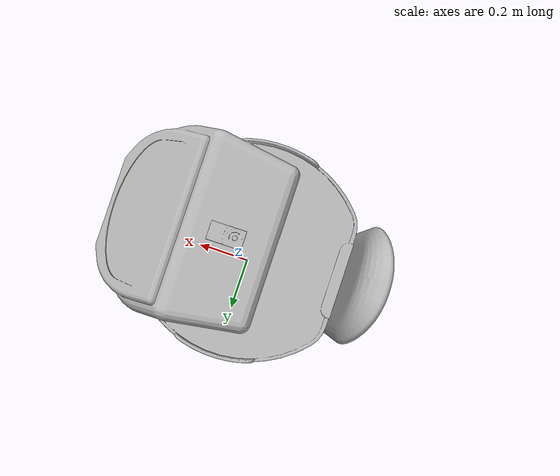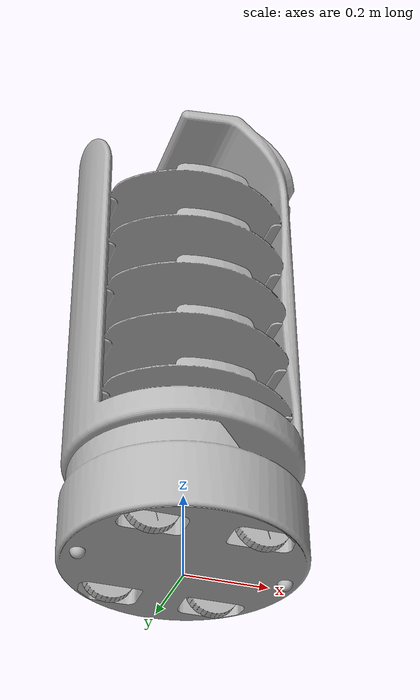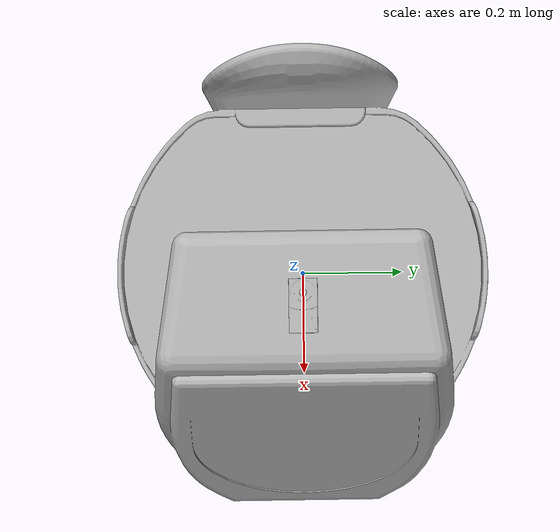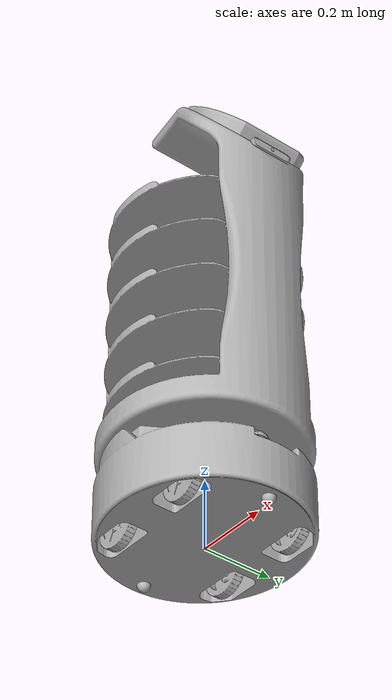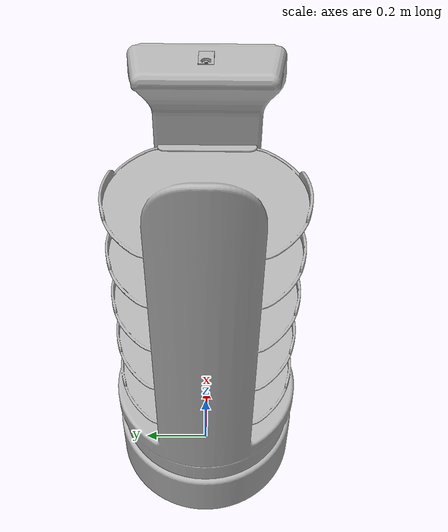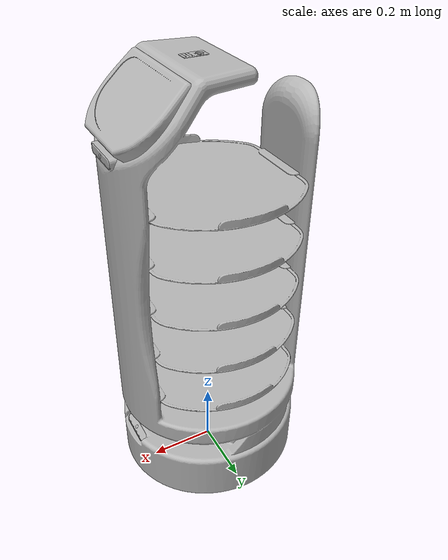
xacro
<?xml version="1.0" ?>
<robot name="waiter_bot" xmlns:xacro="http://www.ros.org/wiki/xacro">

<xacro:include filename="$(find waiter_bot_description)/urdf/materials.xacro" />
<xacro:include filename="$(find waiter_bot_description)/urdf/waiter_bot.trans" />
<xacro:include filename="$(find waiter_bot_description)/urdf/waiter_bot.gazebo" />
<link name="base_link">
  <inertial>
    <origin rpy="0 0 0" xyz="0.00015850885114610685 8.104493708982607e-06 0.4224690664746022"/>
    <mass value="82.92733660749995"/>
    <inertia ixx="12.32713" ixy="-4e-06" ixz="-0.736611" iyy="13.64382" iyz="-8.6e-05" izz="3.690413"/>
  </inertial>
  <visual>
    <origin rpy="0 0 0" xyz="0 0 0"/>
    <geometry>
      <mesh filename="package://waiter_bot_description/meshes/base_link.stl" scale="0.001 0.001 0.001"/>
    </geometry>
    <material name="silver"/>
  </visual>
  <collision>
    <origin rpy="0 0 0" xyz="0 0 0"/>
    <geometry>
      <mesh filename="package://waiter_bot_description/meshes/base_link.stl" scale="0.001 0.001 0.001"/>
    </geometry>
  </collision>
</link>

<link name="RF_wheel_1">
  <inertial>
    <origin rpy="0 0 0" xyz="-1.0849880877281115e-05 0.010620326001437946 2.2832589084698096e-07"/>
    <mass value="1.3869748359513263"/>
    <inertia ixx="0.001952" ixy="-0.0" ixz="-0.0" iyy="0.003745" iyz="0.0" izz="0.001951"/>
  </inertial>
  <visual>
    <origin rpy="0 0 0" xyz="-0.125 0.1777 -0.062699"/>
    <geometry>
      <mesh filename="package://waiter_bot_description/meshes/RF_wheel_1.stl" scale="0.001 0.001 0.001"/>
    </geometry>
    <material name="silver"/>
  </visual>
  <collision>
    <origin rpy="0 0 0" xyz="-0.125 0.1777 -0.062699"/>
    <geometry>
      <mesh filename="package://waiter_bot_description/meshes/RF_wheel_1.stl" scale="0.001 0.001 0.001"/>
    </geometry>
  </collision>
</link>

<link name="LF_wheel_1">
  <inertial>
    <origin rpy="0 0 0" xyz="-1.0876810845258933e-05 -0.010620183619669932 3.0815007066864464e-07"/>
    <mass value="1.386972282070242"/>
    <inertia ixx="0.001952" ixy="0.0" ixz="-0.0" iyy="0.003745" iyz="-0.0" izz="0.001951"/>
  </inertial>
  <visual>
    <origin rpy="0 0 0" xyz="-0.125 -0.177708 -0.062699"/>
    <geometry>
      <mesh filename="package://waiter_bot_description/meshes/LF_wheel_1.stl" scale="0.001 0.001 0.001"/>
    </geometry>
    <material name="silver"/>
  </visual>
  <collision>
    <origin rpy="0 0 0" xyz="-0.125 -0.177708 -0.062699"/>
    <geometry>
      <mesh filename="package://waiter_bot_description/meshes/LF_wheel_1.stl" scale="0.001 0.001 0.001"/>
    </geometry>
  </collision>
</link>

<link name="LB_wheel_1">
  <inertial>
    <origin rpy="0 0 0" xyz="1.0528592677860882e-05 -0.010620184231134755 2.884657919616229e-07"/>
    <mass value="1.3869726779700595"/>
    <inertia ixx="0.001952" ixy="-0.0" ixz="-0.0" iyy="0.003745" iyz="0.0" izz="0.001951"/>
  </inertial>
  <visual>
    <origin rpy="0 0 0" xyz="0.125268 -0.177708 -0.062699"/>
    <geometry>
      <mesh filename="package://waiter_bot_description/meshes/LB_wheel_1.stl" scale="0.001 0.001 0.001"/>
    </geometry>
    <material name="silver"/>
  </visual>
  <collision>
    <origin rpy="0 0 0" xyz="0.125268 -0.177708 -0.062699"/>
    <geometry>
      <mesh filename="package://waiter_bot_description/meshes/LB_wheel_1.stl" scale="0.001 0.001 0.001"/>
    </geometry>
  </collision>
</link>

<link name="RB_wheel_1">
  <inertial>
    <origin rpy="0 0 0" xyz="1.0585566301235527e-05 0.010620326512925077 1.9632257226842587e-07"/>
    <mass value="1.3869747655938025"/>
    <inertia ixx="0.001952" ixy="0.0" ixz="0.0" iyy="0.003745" iyz="-0.0" izz="0.001951"/>
  </inertial>
  <visual>
    <origin rpy="0 0 0" xyz="0.125268 0.1777 -0.062699"/>
    <geometry>
      <mesh filename="package://waiter_bot_description/meshes/RB_wheel_1.stl" scale="0.001 0.001 0.001"/>
    </geometry>
    <material name="silver"/>
  </visual>
  <collision>
    <origin rpy="0 0 0" xyz="0.125268 0.1777 -0.062699"/>
    <geometry>
      <mesh filename="package://waiter_bot_description/meshes/RB_wheel_1.stl" scale="0.001 0.001 0.001"/>
    </geometry>
  </collision>
</link>

<link name="castor_b_1">
  <inertial>
    <origin rpy="0 0 0" xyz="-4.887251182084107e-07 2.769780584099054e-07 -0.006282365834419015"/>
    <mass value="0.09188978524671036"/>
    <inertia ixx="7e-06" ixy="0.0" ixz="-0.0" iyy="7e-06" iyz="-0.0" izz="1.1e-05"/>
  </inertial>
  <visual>
    <origin rpy="0 0 0" xyz="0.240005 0.000217 -0.018152"/>
    <geometry>
      <mesh filename="package://waiter_bot_description/meshes/castor_b_1.stl" scale="0.001 0.001 0.001"/>
    </geometry>
    <material name="silver"/>
  </visual>
  <collision>
    <origin rpy="0 0 0" xyz="0.240005 0.000217 -0.018152"/>
    <geometry>
      <mesh filename="package://waiter_bot_description/meshes/castor_b_1.stl" scale="0.001 0.001 0.001"/>
    </geometry>
  </collision>
</link>

<link name="castor_f_1">
  <inertial>
    <origin rpy="0 0 0" xyz="-4.887251182361663e-07 2.769780584182266e-07 -0.006782365834419015"/>
    <mass value="0.09188978524671036"/>
    <inertia ixx="7e-06" ixy="0.0" ixz="-0.0" iyy="7e-06" iyz="-0.0" izz="1.1e-05"/>
  </inertial>
  <visual>
    <origin rpy="0 0 0" xyz="-0.239995 0.000217 -0.018152"/>
    <geometry>
      <mesh filename="package://waiter_bot_description/meshes/castor_f_1.stl" scale="0.001 0.001 0.001"/>
    </geometry>
    <material name="silver"/>
  </visual>
  <collision>
    <origin rpy="0 0 0" xyz="-0.239995 0.000217 -0.018152"/>
    <geometry>
      <mesh filename="package://waiter_bot_description/meshes/castor_f_1.stl" scale="0.001 0.001 0.001"/>
    </geometry>
  </collision>
</link>

<link name="bottom_camera_1">
  <inertial>
    <origin rpy="0 0 0" xyz="0.009135027943883017 0.00035937558131350357 0.010008510128471121"/>
    <mass value="0.02761517149778078"/>
    <inertia ixx="3.9e-05" ixy="-0.0" ixz="0.0" iyy="5e-06" iyz="0.0" izz="3.9e-05"/>
  </inertial>
  <visual>
    <origin rpy="0 0 0" xyz="-0.240953 1.1e-05 -0.147021"/>
    <geometry>
      <mesh filename="package://waiter_bot_description/meshes/bottom_camera_1.stl" scale="0.001 0.001 0.001"/>
    </geometry>
    <material name="silver"/>
  </visual>
  <collision>
    <origin rpy="0 0 0" xyz="-0.240953 1.1e-05 -0.147021"/>
    <geometry>
      <mesh filename="package://waiter_bot_description/meshes/bottom_camera_1.stl" scale="0.001 0.001 0.001"/>
    </geometry>
  </collision>
</link>

<link name="b_lens_1">
  <inertial>
    <origin rpy="0 0 0" xyz="0.0003294997563826896 4.034308861094136e-07 0.00034740560510687635"/>
    <mass value="0.00021637150035241193"/>
    <inertia ixx="0.0" ixy="0.0" ixz="0.0" iyy="0.0" iyz="-0.0" izz="0.0"/>
  </inertial>
  <visual>
    <origin rpy="0 0 0" xyz="-0.258786 1.1e-05 -0.165805"/>
    <geometry>
      <mesh filename="package://waiter_bot_description/meshes/b_lens_1.stl" scale="0.001 0.001 0.001"/>
    </geometry>
    <material name="silver"/>
  </visual>
  <collision>
    <origin rpy="0 0 0" xyz="-0.258786 1.1e-05 -0.165805"/>
    <geometry>
      <mesh filename="package://waiter_bot_description/meshes/b_lens_1.stl" scale="0.001 0.001 0.001"/>
    </geometry>
  </collision>
</link>

<link name="lidar_1">
  <inertial>
    <origin rpy="0 0 0" xyz="-0.00026087384638012745 -2.2372644981951686e-07 -0.009057087464498459"/>
    <mass value="0.24958698875333066"/>
    <inertia ixx="0.000147" ixy="0.0" ixz="1e-06" iyy="0.000145" iyz="0.0" izz="0.000208"/>
  </inertial>
  <visual>
    <origin rpy="0 0 0" xyz="-0.183375 2.5e-05 -0.211152"/>
    <geometry>
      <mesh filename="package://waiter_bot_description/meshes/lidar_1.stl" scale="0.001 0.001 0.001"/>
    </geometry>
    <material name="silver"/>
  </visual>
  <collision>
    <origin rpy="0 0 0" xyz="-0.183375 2.5e-05 -0.211152"/>
    <geometry>
      <mesh filename="package://waiter_bot_description/meshes/lidar_1.stl" scale="0.001 0.001 0.001"/>
    </geometry>
  </collision>
</link>

<link name="front_camera_1">
  <inertial>
    <origin rpy="0 0 0" xyz="0.013546788294130752 0.0003620979990916379 0.00026581855348162264"/>
    <mass value="0.02761675464418201"/>
    <inertia ixx="3.9e-05" ixy="0.0" ixz="0.0" iyy="5e-06" iyz="0.0" izz="3.9e-05"/>
  </inertial>
  <visual>
    <origin rpy="0 0 0" xyz="-0.257516 -4e-06 -1.112152"/>
    <geometry>
      <mesh filename="package://waiter_bot_description/meshes/front_camera_1.stl" scale="0.001 0.001 0.001"/>
    </geometry>
    <material name="silver"/>
  </visual>
  <collision>
    <origin rpy="0 0 0" xyz="-0.257516 -4e-06 -1.112152"/>
    <geometry>
      <mesh filename="package://waiter_bot_description/meshes/front_camera_1.stl" scale="0.001 0.001 0.001"/>
    </geometry>
  </collision>
</link>

<link name="f_lens_1">
  <inertial>
    <origin rpy="0 0 0" xyz="0.0004791081817097087 6.861266630813075e-08 1.6388644108467076e-07"/>
    <mass value="0.0002163715003524205"/>
    <inertia ixx="0.0" ixy="-0.0" ixz="0.0" iyy="0.0" iyz="0.0" izz="0.0"/>
  </inertial>
  <visual>
    <origin rpy="0 0 0" xyz="-0.283416 -4e-06 -1.112152"/>
    <geometry>
      <mesh filename="package://waiter_bot_description/meshes/f_lens_1.stl" scale="0.001 0.001 0.001"/>
    </geometry>
    <material name="silver"/>
  </visual>
  <collision>
    <origin rpy="0 0 0" xyz="-0.283416 -4e-06 -1.112152"/>
    <geometry>
      <mesh filename="package://waiter_bot_description/meshes/f_lens_1.stl" scale="0.001 0.001 0.001"/>
    </geometry>
  </collision>
</link>

<link name="top_camera_1">
  <inertial>
    <origin rpy="0 0 0" xyz="0.0005455138788880223 1.5249271259410112e-05 0.011441567129830021"/>
    <mass value="0.05108071655535039"/>
    <inertia ixx="7e-06" ixy="-0.0" ixz="-0.0" iyy="2e-05" iyz="0.0" izz="2.2e-05"/>
  </inertial>
  <visual>
    <origin rpy="0 0 0" xyz="-0.037384 -4e-06 -1.288152"/>
    <geometry>
      <mesh filename="package://waiter_bot_description/meshes/top_camera_1.stl" scale="0.001 0.001 0.001"/>
    </geometry>
    <material name="silver"/>
  </visual>
  <collision>
    <origin rpy="0 0 0" xyz="-0.037384 -4e-06 -1.288152"/>
    <geometry>
      <mesh filename="package://waiter_bot_description/meshes/top_camera_1.stl" scale="0.001 0.001 0.001"/>
    </geometry>
  </collision>
</link>

<link name="t_lens_1">
  <inertial>
    <origin rpy="0 0 0" xyz="-2.260166132826702e-07 6.878043513783974e-08 0.00047207385274705693"/>
    <mass value="0.00012158891309059741"/>
    <inertia ixx="0.0" ixy="0.0" ixz="0.0" iyy="0.0" iyz="0.0" izz="0.0"/>
  </inertial>
  <visual>
    <origin rpy="0 0 0" xyz="-0.022222 -4e-06 -1.309"/>
    <geometry>
      <mesh filename="package://waiter_bot_description/meshes/t_lens_1.stl" scale="0.001 0.001 0.001"/>
    </geometry>
    <material name="silver"/>
  </visual>
  <collision>
    <origin rpy="0 0 0" xyz="-0.022222 -4e-06 -1.309"/>
    <geometry>
      <mesh filename="package://waiter_bot_description/meshes/t_lens_1.stl" scale="0.001 0.001 0.001"/>
    </geometry>
  </collision>
</link>

<joint name="RF_W" type="continuous">
  <origin rpy="0 0 0" xyz="0.125 -0.1777 0.062699"/>
  <parent link="base_link"/>
  <child link="RF_wheel_1"/>
  <axis xyz="0.0 1.0 -0.0"/>
</joint>

<joint name="LF_W" type="continuous">
  <origin rpy="0 0 0" xyz="0.125 0.177708 0.062699"/>
  <parent link="base_link"/>
  <child link="LF_wheel_1"/>
  <axis xyz="0.0 1.0 -0.0"/>
</joint>

<joint name="LB_W" type="continuous">
  <origin rpy="0 0 0" xyz="-0.125268 0.177708 0.062699"/>
  <parent link="base_link"/>
  <child link="LB_wheel_1"/>
  <axis xyz="0.0 1.0 0.0"/>
</joint>

<joint name="RB_w" type="continuous">
  <origin rpy="0 0 0" xyz="-0.125268 -0.1777 0.062699"/>
  <parent link="base_link"/>
  <child link="RB_wheel_1"/>
  <axis xyz="0.0 1.0 0.0"/>
</joint>

<joint name="castor1" type="fixed">
  <origin rpy="0 0 0" xyz="-0.240005 -0.000217 0.018152"/>
  <parent link="base_link"/>
  <child link="castor_b_1"/>
</joint>

<joint name="castor2" type="fixed">
  <origin rpy="0 0 0" xyz="0.239995 -0.000217 0.018152"/>
  <parent link="base_link"/>
  <child link="castor_f_1"/>
</joint>

<joint name="b_cam" type="fixed">
  <origin rpy="0 0 0" xyz="0.240953 -1.1e-05 0.147021"/>
  <parent link="base_link"/>
  <child link="bottom_camera_1"/>
</joint>

<joint name="B_lens" type="fixed">
  <origin rpy="0 0 0" xyz="0.017833 0.0 0.018784"/>
  <parent link="bottom_camera_1"/>
  <child link="b_lens_1"/>
</joint>

<joint name="lidar_j" type="fixed">
  <origin rpy="0 0 0" xyz="0.183375 -2.5e-05 0.211152"/>
  <parent link="base_link"/>
  <child link="lidar_1"/>
</joint>

<joint name="f_cam" type="fixed">
  <origin rpy="0 0 0" xyz="0.257516 4e-06 1.112152"/>
  <parent link="base_link"/>
  <child link="front_camera_1"/>
</joint>

<joint name="F_lens" type="fixed">
  <origin rpy="0 0 0" xyz="0.0259 0.0 0.0"/>
  <parent link="front_camera_1"/>
  <child link="f_lens_1"/>
</joint>

<joint name="t_cam" type="fixed">
  <origin rpy="0 0 0" xyz="0.037384 4e-06 1.288152"/>
  <parent link="base_link"/>
  <child link="top_camera_1"/>
</joint>

<joint name="T_lens" type="fixed">
  <origin rpy="0 0 0" xyz="-0.015162 0.0 0.020848"/>
  <parent link="top_camera_1"/>
  <child link="t_lens_1"/>
</joint>

</robot>

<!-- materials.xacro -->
<robot name="waiter_bot" xmlns:xacro="http://www.ros.org/wiki/xacro" >

<material name="silver">
  <color rgba="0.700 0.700 0.700 1.000"/>
</material>

</robot>

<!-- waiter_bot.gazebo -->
<robot name="waiter_bot" xmlns:xacro="http://www.ros.org/wiki/xacro" >

<xacro:property name="body_color" value="Gazebo/DarkGrey" />
<xacro:property name="wheel" value="Gazebo/FlatBlack" />
<xacro:property name="camera" value="Gazebo/BlackTransparent" />
<xacro:property name="lidar" value="Gazebo/Blue" />
<xacro:property name="castor" value="Gazebo/Grey" />
<xacro:property name="lens" value="Gazebo/GreyTransparent" />

<gazebo>
  <plugin filename="libgazebo_ros_control.so" name="control"/>
</gazebo>
<gazebo reference="base_link">
  <material>${body_color}</material>
  <mu1>0.2</mu1>
  <mu2>0.2</mu2>
  <selfCollide>true</selfCollide>
  <gravity>true</gravity>
</gazebo>

<gazebo reference="RF_wheel_1">
  <material>${wheel}</material>
  <mu1>0.2</mu1>
  <mu2>0.2</mu2>
  <selfCollide>true</selfCollide>
</gazebo>

<gazebo reference="LF_wheel_1">
  <material>${wheel}</material>
  <mu1>0.2</mu1>
  <mu2>.2</mu2>
  <selfCollide>true</selfCollide>
</gazebo>

<gazebo reference="LB_wheel_1">
  <material>${wheel}</material>
  <mu1>0.2</mu1>
  <mu2>0.2</mu2>
  <selfCollide>true</selfCollide>
</gazebo>

<gazebo reference="RB_wheel_1">
  <material>${wheel}</material>
  <mu1>0.2</mu1>
  <mu2>0.2</mu2>
  <selfCollide>true</selfCollide>
</gazebo>

<gazebo reference="castor_b_1">
  <material>${castor}</material>
  <mu1>0.2</mu1>
  <mu2>0.2</mu2>
  <selfCollide>true</selfCollide>
</gazebo>

<gazebo reference="castor_f_1">
  <material>${castor}</material>
  <mu1>0.2</mu1>
  <mu2>0.2</mu2>
  <selfCollide>true</selfCollide>
</gazebo>

<gazebo reference="bottom_camera_1">
  <material>${camera}</material>
  <mu1>0.2</mu1>
  <mu2>0.2</mu2>
  <selfCollide>true</selfCollide>
</gazebo>

<gazebo reference="b_lens_1">
  <material>${lens}</material>
  <mu1>0.2</mu1>
  <mu2>0.2</mu2>
  <selfCollide>true</selfCollide>
</gazebo>

<gazebo reference="lidar_1">
  <material>${lidar}</material>
  <mu1>0.2</mu1>
  <mu2>0.2</mu2>
  <selfCollide>true</selfCollide>
</gazebo>

<gazebo reference="front_camera_1">
  <material>${camera}</material>
  <mu1>0.2</mu1>
  <mu2>0.2</mu2>
  <selfCollide>true</selfCollide>
</gazebo>

<gazebo reference="f_lens_1">
  <material>${lens}</material>
  <mu1>0.2</mu1>
  <mu2>0.2</mu2>
  <selfCollide>true</selfCollide>
</gazebo>

<gazebo reference="top_camera_1">
  <material>${camera}</material>
  <mu1>0.2</mu1>
  <mu2>0.2</mu2>
  <selfCollide>true</selfCollide>
</gazebo>

<gazebo reference="t_lens_1">
  <material>${lens}</material>
  <mu1>0.2</mu1>
  <mu2>0.2</mu2>
  <selfCollide>true</selfCollide>
</gazebo>

<!-- ********** SKID STEER DRIVE PLUGIN ********** -->
<gazebo>
  <plugin name="skid_steer_drive_controller" filename="libgazebo_ros_skid_steer_drive.so">
    <updateRate>100.0</updateRate>
    <robotNamespace>/</robotNamespace>
    <leftFrontJoint>LF_W</leftFrontJoint>
    <rightFrontJoint>RF_W</rightFrontJoint>
    <leftRearJoint>LB_W</leftRearJoint>
    <rightRearJoint>RB_w</rightRearJoint>
    <wheelSeparation>0.330001</wheelSeparation>
    <wheelDiameter>0.127</wheelDiameter>
    <robotBaseFrame>base_link</robotBaseFrame>
    <torque>10</torque>
    <topicName>cmd_vel</topicName>
    <broadcastTF>true</broadcastTF>
  </plugin>
</gazebo>

<!-- ******* LIDAR PLUGIN ******** -->
  <gazebo reference="lidar_1">
    <sensor type="gpu_ray" name="rplidar_a1">
      <pose>0 0 0 0 0 0</pose>
      <visualize>false</visualize>
      <update_rate>10</update_rate>
      <ray>
        <scan>
          <horizontal>
            <samples>720</samples>
            <resolution>1</resolution>
            <!-- 180 degree left side -->
            <min_angle>-2.0944</min_angle>
            <!-- 180 degree right side -->
            <max_angle>2.0944</max_angle>
          </horizontal>
        </scan>
        <range>
          <min>0.10</min>
          <max>10.0</max>
          <resolution>0.01</resolution>
        </range>
        <noise>
          <type>gaussian</type>
          <mean>0.0</mean>
          <stddev>0.01</stddev>
        </noise>
      </ray>
      <plugin name="gazebo_ros_head_hokuyo_controller" filename="libgazebo_ros_gpu_laser.so">
        <topicName>/scan</topicName>
        <frameName>lidar_1</frameName>
      </plugin>
    </sensor>
  </gazebo>

<!-- *** FRONT DEPTH CAMERA ****** -->
  <gazebo reference="f_lens_1">
  <sensor name="camera_1" type="depth">
    <update_rate>20</update_rate>
    <camera>
      <horizontal_fov>1.047198</horizontal_fov>
      <image>
        <width>640</width>
        <height>480</height>
        <format>R8G8B8</format>
      </image>
      <clip>
        <near>0.05</near>
        <far>500</far>
      </clip>
    </camera>
        <plugin name="camera_plugin" filename="libgazebo_ros_openni_kinect.so">
          <baseline>0.2</baseline>
          <alwaysOn>true</alwaysOn>
          <updateRate>0.0</updateRate>
          <cameraName>f_camera</cameraName>
          <imageTopicName>/f_camera/color/image_raw</imageTopicName>
          <cameraInfoTopicName>/f_camera/color/camera_info</cameraInfoTopicName>
          <depthImageTopicName>/f_camera/depth/image_raw</depthImageTopicName>
          <depthImageCameraInfoTopicName>/f_camera/depth/camera_info</depthImageCameraInfoTopicName>
          <pointCloudTopicName>/f_camera/depth/points</pointCloudTopicName>
          <frameName>f_lens_1</frameName>
          <pointCloudCutoff>0.5</pointCloudCutoff>
          <pointCloudCutoffMax>3.0</pointCloudCutoffMax>
          <distortionK1>0</distortionK1>
          <distortionK2>0</distortionK2>
          <distortionK3>0</distortionK3>
          <distortionT1>0</distortionT1>
          <distortionT2>0</distortionT2>
          <CxPrime>0</CxPrime>
          <Cx>0</Cx>
          <Cy>0</Cy>
          <focalLength>0</focalLength>
          <hackBaseline>0</hackBaseline>
        </plugin>
  </sensor>
</gazebo>

<!-- *** BOTTOM DEPTH CAMERA ****** -->
<gazebo reference="b_lens_1">
  <sensor name="camera_1" type="depth">
    <update_rate>20</update_rate>
    <camera>
      <horizontal_fov>1.047198</horizontal_fov>
      <image>
        <width>640</width>
        <height>480</height>
        <format>R8G8B8</format>
      </image>
      <clip>
        <near>0.05</near>
        <far>500</far>
      </clip>
    </camera>
        <plugin name="camera_plugin" filename="libgazebo_ros_openni_kinect.so">
          <baseline>0.2</baseline>
          <alwaysOn>true</alwaysOn>
          <updateRate>0.0</updateRate>
          <cameraName>b_camera</cameraName>
          <imageTopicName>/b_camera/color/image_raw</imageTopicName>
          <cameraInfoTopicName>/b_camera/color/camera_info</cameraInfoTopicName>
          <depthImageTopicName>/b_camera/depth/image_raw</depthImageTopicName>
          <depthImageCameraInfoTopicName>/b_camera/depth/camera_info</depthImageCameraInfoTopicName>
          <pointCloudTopicName>/b_camera/depth/points</pointCloudTopicName>
          <frameName>b_lens_1</frameName>
          <pointCloudCutoff>0.5</pointCloudCutoff>
          <pointCloudCutoffMax>3.0</pointCloudCutoffMax>
          <distortionK1>0</distortionK1>
          <distortionK2>0</distortionK2>
          <distortionK3>0</distortionK3>
          <distortionT1>0</distortionT1>
          <distortionT2>0</distortionT2>
          <CxPrime>0</CxPrime>
          <Cx>0</Cx>
          <Cy>0</Cy>
          <focalLength>0</focalLength>
          <hackBaseline>0</hackBaseline>
        </plugin>
  </sensor>
</gazebo>

<!--  Camera plugin -->
  <gazebo reference="t_lens_1">
    <sensor type="camera" name="camera1">
      <update_rate>30.0</update_rate>
      <camera name="head">
        <horizontal_fov>1.3962634</horizontal_fov>
        <image>
          <width>800</width>
          <height>800</height>
          <format>R8G8B8</format>
        </image>
        <clip>
          <near>0.02</near>
          <far>500</far>
        </clip>
        <noise>
          <type>gaussian</type>
          <mean>0.0</mean>
          <stddev>0.007</stddev>
        </noise>
      </camera>
      <plugin name="camera_controller" filename="libgazebo_ros_camera.so">
        <alwaysOn>true</alwaysOn>
        <updateRate>0.0</updateRate>
        <cameraName>/t_camera</cameraName>
        <imageTopicName>image_raw</imageTopicName>
        <cameraInfoTopicName>camera_info</cameraInfoTopicName>
        <frameName>t_lens_1</frameName>
        <hackBaseline>0.07</hackBaseline>
        <distortionK1>0.0</distortionK1>
        <distortionK2>0.0</distortionK2>
        <distortionK3>0.0</distortionK3>
        <distortionT1>0.0</distortionT1>
        <distortionT2>0.0</distortionT2>
      </plugin>
    </sensor>
  </gazebo>

</robot>
